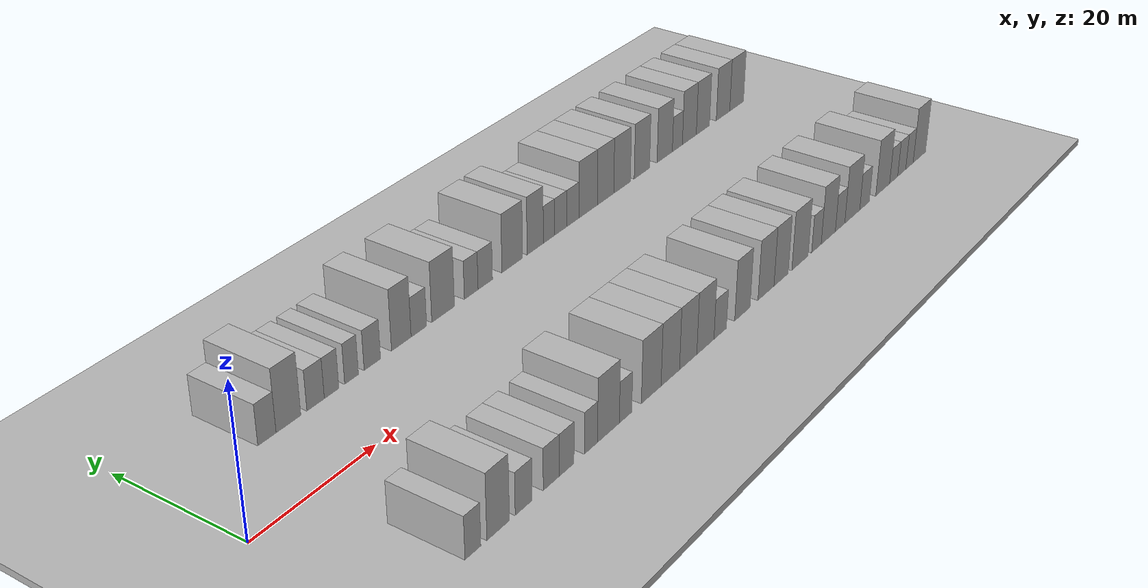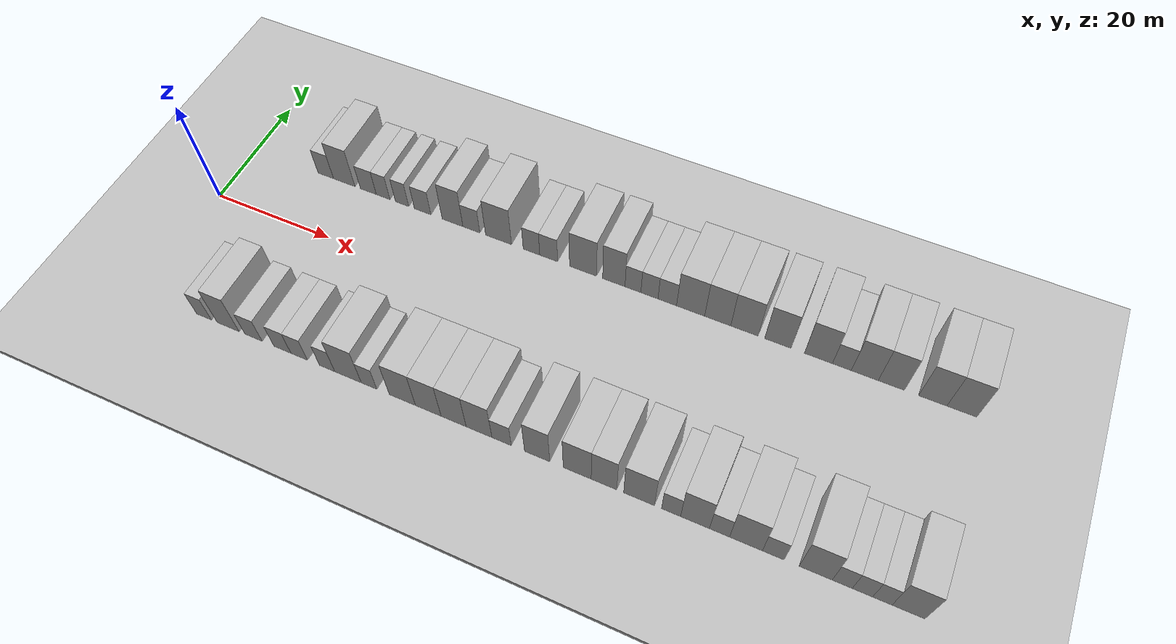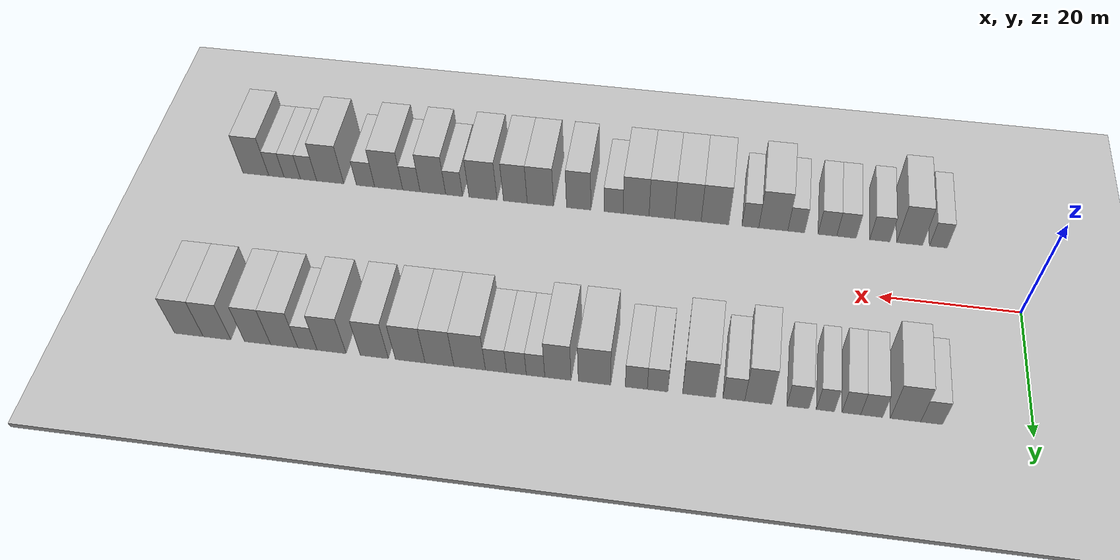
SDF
<sdf version="1.6">
 <world name="default">
  <include><name>ground_plane_1</name><uri>model://HANNAS_ground_plane</uri></include>
  <include>
   <name>ground_plane_2</name>
   <uri>model://HANNAS_ground_plane</uri>
   <pose>100 0 0  0 0 0</pose>
  </include>
  <model name="building_1">
   <static>1</static>
   <pose>13.4440 15.0000 0 0.000000 0.000000 1.570796</pose>
   <link name="link">
    <pose>0 0 3.00 0 0 0</pose>
    <collision name="collision"><geometry><box><size>10.0000 2.8879 6.0000</size></box></geometry></collision>
    <visual name="visual">
     <cast_shadows>0</cast_shadows>
     <geometry><box><size>10.0000 2.8879 6.0000</size></box></geometry>
     <material>
      <script>
       <uri>model://HANNAS_wall/materials/scripts</uri>
       <uri>model://HANNAS_wall/materials/textures</uri>
       <name>vrc/HANNAS_wall</name>
      </script>
     </material>
    </visual>
   </link>
  </model>
  <model name="building_2">
   <static>1</static>
   <pose>16.8819 15.0000 0 0.000000 0.000000 1.570796</pose>
   <link name="link">
    <pose>0 0 4.50 0 0 0</pose>
    <collision name="collision"><geometry><box><size>10.0000 3.9879 9.0000</size></box></geometry></collision>
    <visual name="visual">
     <cast_shadows>0</cast_shadows>
     <geometry><box><size>10.0000 3.9879 9.0000</size></box></geometry>
     <material>
      <script>
       <uri>model://HANNAS_wall/materials/scripts</uri>
       <uri>model://HANNAS_wall/materials/textures</uri>
       <name>vrc/HANNAS_wall</name>
      </script>
     </material>
    </visual>
   </link>
  </model>
  <model name="building_3">
   <static>1</static>
   <pose>21.3329 15.0000 0 0.000000 0.000000 1.570796</pose>
   <link name="link">
    <pose>0 0 3.00 0 0 0</pose>
    <collision name="collision"><geometry><box><size>10.0000 2.9140 6.0000</size></box></geometry></collision>
    <visual name="visual">
     <cast_shadows>0</cast_shadows>
     <geometry><box><size>10.0000 2.9140 6.0000</size></box></geometry>
     <material>
      <script>
       <uri>model://HANNAS_wall/materials/scripts</uri>
       <uri>model://HANNAS_wall/materials/textures</uri>
       <name>vrc/HANNAS_wall</name>
      </script>
     </material>
    </visual>
   </link>
  </model>
  <model name="building_4">
   <static>1</static>
   <pose>24.0286 15.0000 0 0.000000 0.000000 1.570796</pose>
   <link name="link">
    <pose>0 0 3.00 0 0 0</pose>
    <collision name="collision"><geometry><box><size>10.0000 2.4774 6.0000</size></box></geometry></collision>
    <visual name="visual">
     <cast_shadows>0</cast_shadows>
     <geometry><box><size>10.0000 2.4774 6.0000</size></box></geometry>
     <material>
      <script>
       <uri>model://HANNAS_wall/materials/scripts</uri>
       <uri>model://HANNAS_wall/materials/textures</uri>
       <name>vrc/HANNAS_wall</name>
      </script>
     </material>
    </visual>
   </link>
  </model>
  <model name="building_5">
   <static>1</static>
   <pose>27.4679 15.0000 0 0.000000 0.000000 1.570796</pose>
   <link name="link">
    <pose>0 0 3.00 0 0 0</pose>
    <collision name="collision"><geometry><box><size>10.0000 2.4012 6.0000</size></box></geometry></collision>
    <visual name="visual">
     <cast_shadows>0</cast_shadows>
     <geometry><box><size>10.0000 2.4012 6.0000</size></box></geometry>
     <material>
      <script>
       <uri>model://HANNAS_wall/materials/scripts</uri>
       <uri>model://HANNAS_wall/materials/textures</uri>
       <name>vrc/HANNAS_wall</name>
      </script>
     </material>
    </visual>
   </link>
  </model>
  <model name="building_6">
   <static>1</static>
   <pose>31.1410 15.0000 0 0.000000 0.000000 1.570796</pose>
   <link name="link">
    <pose>0 0 3.00 0 0 0</pose>
    <collision name="collision"><geometry><box><size>10.0000 2.9450 6.0000</size></box></geometry></collision>
    <visual name="visual">
     <cast_shadows>0</cast_shadows>
     <geometry><box><size>10.0000 2.9450 6.0000</size></box></geometry>
     <material>
      <script>
       <uri>model://HANNAS_wall/materials/scripts</uri>
       <uri>model://HANNAS_wall/materials/textures</uri>
       <name>vrc/HANNAS_wall</name>
      </script>
     </material>
    </visual>
   </link>
  </model>
  <model name="building_7">
   <static>1</static>
   <pose>36.4370 15.0000 0 0.000000 0.000000 1.570796</pose>
   <link name="link">
    <pose>0 0 4.50 0 0 0</pose>
    <collision name="collision"><geometry><box><size>10.0000 3.6470 9.0000</size></box></geometry></collision>
    <visual name="visual">
     <cast_shadows>0</cast_shadows>
     <geometry><box><size>10.0000 3.6470 9.0000</size></box></geometry>
     <material>
      <script>
       <uri>model://HANNAS_wall/materials/scripts</uri>
       <uri>model://HANNAS_wall/materials/textures</uri>
       <name>vrc/HANNAS_wall</name>
      </script>
     </material>
    </visual>
   </link>
  </model>
  <model name="building_8">
   <static>1</static>
   <pose>39.7335 15.0000 0 0.000000 0.000000 1.570796</pose>
   <link name="link">
    <pose>0 0 3.00 0 0 0</pose>
    <collision name="collision"><geometry><box><size>10.0000 2.9459 6.0000</size></box></geometry></collision>
    <visual name="visual">
     <cast_shadows>0</cast_shadows>
     <geometry><box><size>10.0000 2.9459 6.0000</size></box></geometry>
     <material>
      <script>
       <uri>model://HANNAS_wall/materials/scripts</uri>
       <uri>model://HANNAS_wall/materials/textures</uri>
       <name>vrc/HANNAS_wall</name>
      </script>
     </material>
    </visual>
   </link>
  </model>
  <model name="building_9">
   <static>1</static>
   <pose>44.4339 15.0000 0 0.000000 0.000000 1.570796</pose>
   <link name="link">
    <pose>0 0 4.50 0 0 0</pose>
    <collision name="collision"><geometry><box><size>10.0000 4.4549 9.0000</size></box></geometry></collision>
    <visual name="visual">
     <cast_shadows>0</cast_shadows>
     <geometry><box><size>10.0000 4.4549 9.0000</size></box></geometry>
     <material>
      <script>
       <uri>model://HANNAS_wall/materials/scripts</uri>
       <uri>model://HANNAS_wall/materials/textures</uri>
       <name>vrc/HANNAS_wall</name>
      </script>
     </material>
    </visual>
   </link>
  </model>
  <model name="building_10">
   <static>1</static>
   <pose>50.0576 15.0000 0 0.000000 0.000000 1.570796</pose>
   <link name="link">
    <pose>0 0 3.00 0 0 0</pose>
    <collision name="collision"><geometry><box><size>10.0000 2.7924 6.0000</size></box></geometry></collision>
    <visual name="visual">
     <cast_shadows>0</cast_shadows>
     <geometry><box><size>10.0000 2.7924 6.0000</size></box></geometry>
     <material>
      <script>
       <uri>model://HANNAS_wall/materials/scripts</uri>
       <uri>model://HANNAS_wall/materials/textures</uri>
       <name>vrc/HANNAS_wall</name>
      </script>
     </material>
    </visual>
   </link>
  </model>
  <model name="building_11">
   <static>1</static>
   <pose>52.9522 15.0000 0 0.000000 0.000000 1.570796</pose>
   <link name="link">
    <pose>0 0 3.00 0 0 0</pose>
    <collision name="collision"><geometry><box><size>10.0000 2.9969 6.0000</size></box></geometry></collision>
    <visual name="visual">
     <cast_shadows>0</cast_shadows>
     <geometry><box><size>10.0000 2.9969 6.0000</size></box></geometry>
     <material>
      <script>
       <uri>model://HANNAS_wall/materials/scripts</uri>
       <uri>model://HANNAS_wall/materials/textures</uri>
       <name>vrc/HANNAS_wall</name>
      </script>
     </material>
    </visual>
   </link>
  </model>
  <model name="building_12">
   <static>1</static>
   <pose>58.6778 15.0000 0 0.000000 0.000000 1.570796</pose>
   <link name="link">
    <pose>0 0 4.50 0 0 0</pose>
    <collision name="collision"><geometry><box><size>10.0000 4.4542 9.0000</size></box></geometry></collision>
    <visual name="visual">
     <cast_shadows>0</cast_shadows>
     <geometry><box><size>10.0000 4.4542 9.0000</size></box></geometry>
     <material>
      <script>
       <uri>model://HANNAS_wall/materials/scripts</uri>
       <uri>model://HANNAS_wall/materials/textures</uri>
       <name>vrc/HANNAS_wall</name>
      </script>
     </material>
    </visual>
   </link>
  </model>
  <model name="building_13">
   <static>1</static>
   <pose>63.7187 15.0000 0 0.000000 0.000000 1.570796</pose>
   <link name="link">
    <pose>0 0 4.50 0 0 0</pose>
    <collision name="collision"><geometry><box><size>10.0000 3.6277 9.0000</size></box></geometry></collision>
    <visual name="visual">
     <cast_shadows>0</cast_shadows>
     <geometry><box><size>10.0000 3.6277 9.0000</size></box></geometry>
     <material>
      <script>
       <uri>model://HANNAS_wall/materials/scripts</uri>
       <uri>model://HANNAS_wall/materials/textures</uri>
       <name>vrc/HANNAS_wall</name>
      </script>
     </material>
    </visual>
   </link>
  </model>
  <model name="building_14">
   <static>1</static>
   <pose>66.8152 15.0000 0 0.000000 0.000000 1.570796</pose>
   <link name="link">
    <pose>0 0 3.00 0 0 0</pose>
    <collision name="collision"><geometry><box><size>10.0000 2.5653 6.0000</size></box></geometry></collision>
    <visual name="visual">
     <cast_shadows>0</cast_shadows>
     <geometry><box><size>10.0000 2.5653 6.0000</size></box></geometry>
     <material>
      <script>
       <uri>model://HANNAS_wall/materials/scripts</uri>
       <uri>model://HANNAS_wall/materials/textures</uri>
       <name>vrc/HANNAS_wall</name>
      </script>
     </material>
    </visual>
   </link>
  </model>
  <model name="building_15">
   <static>1</static>
   <pose>69.4661 15.0000 0 0.000000 0.000000 1.570796</pose>
   <link name="link">
    <pose>0 0 3.00 0 0 0</pose>
    <collision name="collision"><geometry><box><size>10.0000 2.7366 6.0000</size></box></geometry></collision>
    <visual name="visual">
     <cast_shadows>0</cast_shadows>
     <geometry><box><size>10.0000 2.7366 6.0000</size></box></geometry>
     <material>
      <script>
       <uri>model://HANNAS_wall/materials/scripts</uri>
       <uri>model://HANNAS_wall/materials/textures</uri>
       <name>vrc/HANNAS_wall</name>
      </script>
     </material>
    </visual>
   </link>
  </model>
  <model name="building_16">
   <static>1</static>
   <pose>72.3064 15.0000 0 0.000000 0.000000 1.570796</pose>
   <link name="link">
    <pose>0 0 3.00 0 0 0</pose>
    <collision name="collision"><geometry><box><size>10.0000 2.9440 6.0000</size></box></geometry></collision>
    <visual name="visual">
     <cast_shadows>0</cast_shadows>
     <geometry><box><size>10.0000 2.9440 6.0000</size></box></geometry>
     <material>
      <script>
       <uri>model://HANNAS_wall/materials/scripts</uri>
       <uri>model://HANNAS_wall/materials/textures</uri>
       <name>vrc/HANNAS_wall</name>
      </script>
     </material>
    </visual>
   </link>
  </model>
  <model name="building_17">
   <static>1</static>
   <pose>75.9872 15.0000 0 0.000000 0.000000 1.570796</pose>
   <link name="link">
    <pose>0 0 4.50 0 0 0</pose>
    <collision name="collision"><geometry><box><size>10.0000 4.4175 9.0000</size></box></geometry></collision>
    <visual name="visual">
     <cast_shadows>0</cast_shadows>
     <geometry><box><size>10.0000 4.4175 9.0000</size></box></geometry>
     <material>
      <script>
       <uri>model://HANNAS_wall/materials/scripts</uri>
       <uri>model://HANNAS_wall/materials/textures</uri>
       <name>vrc/HANNAS_wall</name>
      </script>
     </material>
    </visual>
   </link>
  </model>
  <model name="building_18">
   <static>1</static>
   <pose>80.2217 15.0000 0 0.000000 0.000000 1.570796</pose>
   <link name="link">
    <pose>0 0 4.50 0 0 0</pose>
    <collision name="collision"><geometry><box><size>10.0000 4.0515 9.0000</size></box></geometry></collision>
    <visual name="visual">
     <cast_shadows>0</cast_shadows>
     <geometry><box><size>10.0000 4.0515 9.0000</size></box></geometry>
     <material>
      <script>
       <uri>model://HANNAS_wall/materials/scripts</uri>
       <uri>model://HANNAS_wall/materials/textures</uri>
       <name>vrc/HANNAS_wall</name>
      </script>
     </material>
    </visual>
   </link>
  </model>
  <model name="building_19">
   <static>1</static>
   <pose>84.3455 15.0000 0 0.000000 0.000000 1.570796</pose>
   <link name="link">
    <pose>0 0 4.50 0 0 0</pose>
    <collision name="collision"><geometry><box><size>10.0000 4.1960 9.0000</size></box></geometry></collision>
    <visual name="visual">
     <cast_shadows>0</cast_shadows>
     <geometry><box><size>10.0000 4.1960 9.0000</size></box></geometry>
     <material>
      <script>
       <uri>model://HANNAS_wall/materials/scripts</uri>
       <uri>model://HANNAS_wall/materials/textures</uri>
       <name>vrc/HANNAS_wall</name>
      </script>
     </material>
    </visual>
   </link>
  </model>
  <model name="building_20">
   <static>1</static>
   <pose>89.4434 15.0000 0 0.000000 0.000000 1.570796</pose>
   <link name="link">
    <pose>0 0 4.50 0 0 0</pose>
    <collision name="collision"><geometry><box><size>10.0000 4.0000 9.0000</size></box></geometry></collision>
    <visual name="visual">
     <cast_shadows>0</cast_shadows>
     <geometry><box><size>10.0000 4.0000 9.0000</size></box></geometry>
     <material>
      <script>
       <uri>model://HANNAS_wall/materials/scripts</uri>
       <uri>model://HANNAS_wall/materials/textures</uri>
       <name>vrc/HANNAS_wall</name>
      </script>
     </material>
    </visual>
   </link>
  </model>
  <model name="building_21">
   <static>1</static>
   <pose>95.5154 15.0000 0 0.000000 0.000000 1.570796</pose>
   <link name="link">
    <pose>0 0 4.50 0 0 0</pose>
    <collision name="collision"><geometry><box><size>10.0000 4.1440 9.0000</size></box></geometry></collision>
    <visual name="visual">
     <cast_shadows>0</cast_shadows>
     <geometry><box><size>10.0000 4.1440 9.0000</size></box></geometry>
     <material>
      <script>
       <uri>model://HANNAS_wall/materials/scripts</uri>
       <uri>model://HANNAS_wall/materials/textures</uri>
       <name>vrc/HANNAS_wall</name>
      </script>
     </material>
    </visual>
   </link>
  </model>
  <model name="building_22">
   <static>1</static>
   <pose>98.9690 15.0000 0 0.000000 0.000000 1.570796</pose>
   <link name="link">
    <pose>0 0 3.00 0 0 0</pose>
    <collision name="collision"><geometry><box><size>10.0000 2.7631 6.0000</size></box></geometry></collision>
    <visual name="visual">
     <cast_shadows>0</cast_shadows>
     <geometry><box><size>10.0000 2.7631 6.0000</size></box></geometry>
     <material>
      <script>
       <uri>model://HANNAS_wall/materials/scripts</uri>
       <uri>model://HANNAS_wall/materials/textures</uri>
       <name>vrc/HANNAS_wall</name>
      </script>
     </material>
    </visual>
   </link>
  </model>
  <model name="building_23">
   <static>1</static>
   <pose>102.3103 15.0000 0 0.000000 0.000000 1.570796</pose>
   <link name="link">
    <pose>0 0 4.50 0 0 0</pose>
    <collision name="collision"><geometry><box><size>10.0000 3.9195 9.0000</size></box></geometry></collision>
    <visual name="visual">
     <cast_shadows>0</cast_shadows>
     <geometry><box><size>10.0000 3.9195 9.0000</size></box></geometry>
     <material>
      <script>
       <uri>model://HANNAS_wall/materials/scripts</uri>
       <uri>model://HANNAS_wall/materials/textures</uri>
       <name>vrc/HANNAS_wall</name>
      </script>
     </material>
    </visual>
   </link>
  </model>
  <model name="building_24">
   <static>1</static>
   <pose>106.1572 15.0000 0 0.000000 0.000000 1.570796</pose>
   <link name="link">
    <pose>0 0 4.50 0 0 0</pose>
    <collision name="collision"><geometry><box><size>10.0000 3.7744 9.0000</size></box></geometry></collision>
    <visual name="visual">
     <cast_shadows>0</cast_shadows>
     <geometry><box><size>10.0000 3.7744 9.0000</size></box></geometry>
     <material>
      <script>
       <uri>model://HANNAS_wall/materials/scripts</uri>
       <uri>model://HANNAS_wall/materials/textures</uri>
       <name>vrc/HANNAS_wall</name>
      </script>
     </material>
    </visual>
   </link>
  </model>
  <model name="building_25">
   <static>1</static>
   <pose>112.0413 15.0000 0 0.000000 0.000000 1.570796</pose>
   <link name="link">
    <pose>0 0 4.50 0 0 0</pose>
    <collision name="collision"><geometry><box><size>10.0000 3.9937 9.0000</size></box></geometry></collision>
    <visual name="visual">
     <cast_shadows>0</cast_shadows>
     <geometry><box><size>10.0000 3.9937 9.0000</size></box></geometry>
     <material>
      <script>
       <uri>model://HANNAS_wall/materials/scripts</uri>
       <uri>model://HANNAS_wall/materials/textures</uri>
       <name>vrc/HANNAS_wall</name>
      </script>
     </material>
    </visual>
   </link>
  </model>
  <model name="building_26">
   <static>1</static>
   <pose>116.1255 15.0000 0 0.000000 0.000000 1.570796</pose>
   <link name="link">
    <pose>0 0 4.50 0 0 0</pose>
    <collision name="collision"><geometry><box><size>10.0000 4.1748 9.0000</size></box></geometry></collision>
    <visual name="visual">
     <cast_shadows>0</cast_shadows>
     <geometry><box><size>10.0000 4.1748 9.0000</size></box></geometry>
     <material>
      <script>
       <uri>model://HANNAS_wall/materials/scripts</uri>
       <uri>model://HANNAS_wall/materials/textures</uri>
       <name>vrc/HANNAS_wall</name>
      </script>
     </material>
    </visual>
   </link>
  </model>
  <model name="building_54">
   <static>1</static>
   <pose>11.3005 -15.0000 0 0.000000 0.000000 1.570796</pose>
   <link name="link">
    <pose>0 0 3.00 0 0 0</pose>
    <collision name="collision"><geometry><box><size>10.0000 2.6010 6.0000</size></box></geometry></collision>
    <visual name="visual">
     <cast_shadows>0</cast_shadows>
     <geometry><box><size>10.0000 2.6010 6.0000</size></box></geometry>
     <material>
      <script>
       <uri>model://HANNAS_wall/materials/scripts</uri>
       <uri>model://HANNAS_wall/materials/textures</uri>
       <name>vrc/HANNAS_wall</name>
      </script>
     </material>
    </visual>
   </link>
  </model>
  <model name="building_55">
   <static>1</static>
   <pose>15.5116 -15.0000 0 0.000000 0.000000 1.570796</pose>
   <link name="link">
    <pose>0 0 4.50 0 0 0</pose>
    <collision name="collision"><geometry><box><size>10.0000 3.8211 9.0000</size></box></geometry></collision>
    <visual name="visual">
     <cast_shadows>0</cast_shadows>
     <geometry><box><size>10.0000 3.8211 9.0000</size></box></geometry>
     <material>
      <script>
       <uri>model://HANNAS_wall/materials/scripts</uri>
       <uri>model://HANNAS_wall/materials/textures</uri>
       <name>vrc/HANNAS_wall</name>
      </script>
     </material>
    </visual>
   </link>
  </model>
  <model name="building_56">
   <static>1</static>
   <pose>19.9069 -15.0000 0 0.000000 0.000000 1.570796</pose>
   <link name="link">
    <pose>0 0 3.00 0 0 0</pose>
    <collision name="collision"><geometry><box><size>10.0000 2.9697 6.0000</size></box></geometry></collision>
    <visual name="visual">
     <cast_shadows>0</cast_shadows>
     <geometry><box><size>10.0000 2.9697 6.0000</size></box></geometry>
     <material>
      <script>
       <uri>model://HANNAS_wall/materials/scripts</uri>
       <uri>model://HANNAS_wall/materials/textures</uri>
       <name>vrc/HANNAS_wall</name>
      </script>
     </material>
    </visual>
   </link>
  </model>
  <model name="building_57">
   <static>1</static>
   <pose>24.8345 -15.0000 0 0.000000 0.000000 1.570796</pose>
   <link name="link">
    <pose>0 0 3.00 0 0 0</pose>
    <collision name="collision"><geometry><box><size>10.0000 2.8853 6.0000</size></box></geometry></collision>
    <visual name="visual">
     <cast_shadows>0</cast_shadows>
     <geometry><box><size>10.0000 2.8853 6.0000</size></box></geometry>
     <material>
      <script>
       <uri>model://HANNAS_wall/materials/scripts</uri>
       <uri>model://HANNAS_wall/materials/textures</uri>
       <name>vrc/HANNAS_wall</name>
      </script>
     </material>
    </visual>
   </link>
  </model>
  <model name="building_58">
   <static>1</static>
   <pose>27.6690 -15.0000 0 0.000000 0.000000 1.570796</pose>
   <link name="link">
    <pose>0 0 3.00 0 0 0</pose>
    <collision name="collision"><geometry><box><size>10.0000 2.7837 6.0000</size></box></geometry></collision>
    <visual name="visual">
     <cast_shadows>0</cast_shadows>
     <geometry><box><size>10.0000 2.7837 6.0000</size></box></geometry>
     <material>
      <script>
       <uri>model://HANNAS_wall/materials/scripts</uri>
       <uri>model://HANNAS_wall/materials/textures</uri>
       <name>vrc/HANNAS_wall</name>
      </script>
     </material>
    </visual>
   </link>
  </model>
  <model name="building_59">
   <static>1</static>
   <pose>32.3231 -15.0000 0 0.000000 0.000000 1.570796</pose>
   <link name="link">
    <pose>0 0 3.00 0 0 0</pose>
    <collision name="collision"><geometry><box><size>10.0000 2.5244 6.0000</size></box></geometry></collision>
    <visual name="visual">
     <cast_shadows>0</cast_shadows>
     <geometry><box><size>10.0000 2.5244 6.0000</size></box></geometry>
     <material>
      <script>
       <uri>model://HANNAS_wall/materials/scripts</uri>
       <uri>model://HANNAS_wall/materials/textures</uri>
       <name>vrc/HANNAS_wall</name>
      </script>
     </material>
    </visual>
   </link>
  </model>
  <model name="building_60">
   <static>1</static>
   <pose>35.7570 -15.0000 0 0.000000 0.000000 1.570796</pose>
   <link name="link">
    <pose>0 0 4.50 0 0 0</pose>
    <collision name="collision"><geometry><box><size>10.0000 4.3434 9.0000</size></box></geometry></collision>
    <visual name="visual">
     <cast_shadows>0</cast_shadows>
     <geometry><box><size>10.0000 4.3434 9.0000</size></box></geometry>
     <material>
      <script>
       <uri>model://HANNAS_wall/materials/scripts</uri>
       <uri>model://HANNAS_wall/materials/textures</uri>
       <name>vrc/HANNAS_wall</name>
      </script>
     </material>
    </visual>
   </link>
  </model>
  <model name="building_61">
   <static>1</static>
   <pose>39.1903 -15.0000 0 0.000000 0.000000 1.570796</pose>
   <link name="link">
    <pose>0 0 3.00 0 0 0</pose>
    <collision name="collision"><geometry><box><size>10.0000 2.5233 6.0000</size></box></geometry></collision>
    <visual name="visual">
     <cast_shadows>0</cast_shadows>
     <geometry><box><size>10.0000 2.5233 6.0000</size></box></geometry>
     <material>
      <script>
       <uri>model://HANNAS_wall/materials/scripts</uri>
       <uri>model://HANNAS_wall/materials/textures</uri>
       <name>vrc/HANNAS_wall</name>
      </script>
     </material>
    </visual>
   </link>
  </model>
  <model name="building_62">
   <static>1</static>
   <pose>44.5433 -15.0000 0 0.000000 0.000000 1.570796</pose>
   <link name="link">
    <pose>0 0 4.50 0 0 0</pose>
    <collision name="collision"><geometry><box><size>10.0000 4.1827 9.0000</size></box></geometry></collision>
    <visual name="visual">
     <cast_shadows>0</cast_shadows>
     <geometry><box><size>10.0000 4.1827 9.0000</size></box></geometry>
     <material>
      <script>
       <uri>model://HANNAS_wall/materials/scripts</uri>
       <uri>model://HANNAS_wall/materials/textures</uri>
       <name>vrc/HANNAS_wall</name>
      </script>
     </material>
    </visual>
   </link>
  </model>
  <model name="building_63">
   <static>1</static>
   <pose>48.6449 -15.0000 0 0.000000 0.000000 1.570796</pose>
   <link name="link">
    <pose>0 0 4.50 0 0 0</pose>
    <collision name="collision"><geometry><box><size>10.0000 4.0206 9.0000</size></box></geometry></collision>
    <visual name="visual">
     <cast_shadows>0</cast_shadows>
     <geometry><box><size>10.0000 4.0206 9.0000</size></box></geometry>
     <material>
      <script>
       <uri>model://HANNAS_wall/materials/scripts</uri>
       <uri>model://HANNAS_wall/materials/textures</uri>
       <name>vrc/HANNAS_wall</name>
      </script>
     </material>
    </visual>
   </link>
  </model>
  <model name="building_64">
   <static>1</static>
   <pose>52.6003 -15.0000 0 0.000000 0.000000 1.570796</pose>
   <link name="link">
    <pose>0 0 4.50 0 0 0</pose>
    <collision name="collision"><geometry><box><size>10.0000 3.8901 9.0000</size></box></geometry></collision>
    <visual name="visual">
     <cast_shadows>0</cast_shadows>
     <geometry><box><size>10.0000 3.8901 9.0000</size></box></geometry>
     <material>
      <script>
       <uri>model://HANNAS_wall/materials/scripts</uri>
       <uri>model://HANNAS_wall/materials/textures</uri>
       <name>vrc/HANNAS_wall</name>
      </script>
     </material>
    </visual>
   </link>
  </model>
  <model name="building_65">
   <static>1</static>
   <pose>56.5286 -15.0000 0 0.000000 0.000000 1.570796</pose>
   <link name="link">
    <pose>0 0 4.50 0 0 0</pose>
    <collision name="collision"><geometry><box><size>10.0000 3.9665 9.0000</size></box></geometry></collision>
    <visual name="visual">
     <cast_shadows>0</cast_shadows>
     <geometry><box><size>10.0000 3.9665 9.0000</size></box></geometry>
     <material>
      <script>
       <uri>model://HANNAS_wall/materials/scripts</uri>
       <uri>model://HANNAS_wall/materials/textures</uri>
       <name>vrc/HANNAS_wall</name>
      </script>
     </material>
    </visual>
   </link>
  </model>
  <model name="building_66">
   <static>1</static>
   <pose>59.9837 -15.0000 0 0.000000 0.000000 1.570796</pose>
   <link name="link">
    <pose>0 0 3.00 0 0 0</pose>
    <collision name="collision"><geometry><box><size>10.0000 2.9436 6.0000</size></box></geometry></collision>
    <visual name="visual">
     <cast_shadows>0</cast_shadows>
     <geometry><box><size>10.0000 2.9436 6.0000</size></box></geometry>
     <material>
      <script>
       <uri>model://HANNAS_wall/materials/scripts</uri>
       <uri>model://HANNAS_wall/materials/textures</uri>
       <name>vrc/HANNAS_wall</name>
      </script>
     </material>
    </visual>
   </link>
  </model>
  <model name="building_67">
   <static>1</static>
   <pose>65.3320 -15.0000 0 0.000000 0.000000 1.570796</pose>
   <link name="link">
    <pose>0 0 4.50 0 0 0</pose>
    <collision name="collision"><geometry><box><size>10.0000 3.7531 9.0000</size></box></geometry></collision>
    <visual name="visual">
     <cast_shadows>0</cast_shadows>
     <geometry><box><size>10.0000 3.7531 9.0000</size></box></geometry>
     <material>
      <script>
       <uri>model://HANNAS_wall/materials/scripts</uri>
       <uri>model://HANNAS_wall/materials/textures</uri>
       <name>vrc/HANNAS_wall</name>
      </script>
     </material>
    </visual>
   </link>
  </model>
  <model name="building_68">
   <static>1</static>
   <pose>71.2526 -15.0000 0 0.000000 0.000000 1.570796</pose>
   <link name="link">
    <pose>0 0 4.50 0 0 0</pose>
    <collision name="collision"><geometry><box><size>10.0000 4.0881 9.0000</size></box></geometry></collision>
    <visual name="visual">
     <cast_shadows>0</cast_shadows>
     <geometry><box><size>10.0000 4.0881 9.0000</size></box></geometry>
     <material>
      <script>
       <uri>model://HANNAS_wall/materials/scripts</uri>
       <uri>model://HANNAS_wall/materials/textures</uri>
       <name>vrc/HANNAS_wall</name>
      </script>
     </material>
    </visual>
   </link>
  </model>
  <model name="building_69">
   <static>1</static>
   <pose>75.1438 -15.0000 0 0.000000 0.000000 1.570796</pose>
   <link name="link">
    <pose>0 0 4.50 0 0 0</pose>
    <collision name="collision"><geometry><box><size>10.0000 3.6941 9.0000</size></box></geometry></collision>
    <visual name="visual">
     <cast_shadows>0</cast_shadows>
     <geometry><box><size>10.0000 3.6941 9.0000</size></box></geometry>
     <material>
      <script>
       <uri>model://HANNAS_wall/materials/scripts</uri>
       <uri>model://HANNAS_wall/materials/textures</uri>
       <name>vrc/HANNAS_wall</name>
      </script>
     </material>
    </visual>
   </link>
  </model>
  <model name="building_70">
   <static>1</static>
   <pose>80.1816 -15.0000 0 0.000000 0.000000 1.570796</pose>
   <link name="link">
    <pose>0 0 4.50 0 0 0</pose>
    <collision name="collision"><geometry><box><size>10.0000 4.3816 9.0000</size></box></geometry></collision>
    <visual name="visual">
     <cast_shadows>0</cast_shadows>
     <geometry><box><size>10.0000 4.3816 9.0000</size></box></geometry>
     <material>
      <script>
       <uri>model://HANNAS_wall/materials/scripts</uri>
       <uri>model://HANNAS_wall/materials/textures</uri>
       <name>vrc/HANNAS_wall</name>
      </script>
     </material>
    </visual>
   </link>
  </model>
  <model name="building_71">
   <static>1</static>
   <pose>84.7044 -15.0000 0 0.000000 0.000000 1.570796</pose>
   <link name="link">
    <pose>0 0 3.00 0 0 0</pose>
    <collision name="collision"><geometry><box><size>10.0000 2.6641 6.0000</size></box></geometry></collision>
    <visual name="visual">
     <cast_shadows>0</cast_shadows>
     <geometry><box><size>10.0000 2.6641 6.0000</size></box></geometry>
     <material>
      <script>
       <uri>model://HANNAS_wall/materials/scripts</uri>
       <uri>model://HANNAS_wall/materials/textures</uri>
       <name>vrc/HANNAS_wall</name>
      </script>
     </material>
    </visual>
   </link>
  </model>
  <model name="building_72">
   <static>1</static>
   <pose>88.0471 -15.0000 0 0.000000 0.000000 1.570796</pose>
   <link name="link">
    <pose>0 0 4.50 0 0 0</pose>
    <collision name="collision"><geometry><box><size>10.0000 4.0213 9.0000</size></box></geometry></collision>
    <visual name="visual">
     <cast_shadows>0</cast_shadows>
     <geometry><box><size>10.0000 4.0213 9.0000</size></box></geometry>
     <material>
      <script>
       <uri>model://HANNAS_wall/materials/scripts</uri>
       <uri>model://HANNAS_wall/materials/textures</uri>
       <name>vrc/HANNAS_wall</name>
      </script>
     </material>
    </visual>
   </link>
  </model>
  <model name="building_73">
   <static>1</static>
   <pose>91.4347 -15.0000 0 0.000000 0.000000 1.570796</pose>
   <link name="link">
    <pose>0 0 3.00 0 0 0</pose>
    <collision name="collision"><geometry><box><size>10.0000 2.7540 6.0000</size></box></geometry></collision>
    <visual name="visual">
     <cast_shadows>0</cast_shadows>
     <geometry><box><size>10.0000 2.7540 6.0000</size></box></geometry>
     <material>
      <script>
       <uri>model://HANNAS_wall/materials/scripts</uri>
       <uri>model://HANNAS_wall/materials/textures</uri>
       <name>vrc/HANNAS_wall</name>
      </script>
     </material>
    </visual>
   </link>
  </model>
  <model name="building_74">
   <static>1</static>
   <pose>95.0347 -15.0000 0 0.000000 0.000000 1.570796</pose>
   <link name="link">
    <pose>0 0 4.50 0 0 0</pose>
    <collision name="collision"><geometry><box><size>10.0000 4.4460 9.0000</size></box></geometry></collision>
    <visual name="visual">
     <cast_shadows>0</cast_shadows>
     <geometry><box><size>10.0000 4.4460 9.0000</size></box></geometry>
     <material>
      <script>
       <uri>model://HANNAS_wall/materials/scripts</uri>
       <uri>model://HANNAS_wall/materials/textures</uri>
       <name>vrc/HANNAS_wall</name>
      </script>
     </material>
    </visual>
   </link>
  </model>
  <model name="building_75">
   <static>1</static>
   <pose>98.7172 -15.0000 0 0.000000 0.000000 1.570796</pose>
   <link name="link">
    <pose>0 0 3.00 0 0 0</pose>
    <collision name="collision"><geometry><box><size>10.0000 2.9191 6.0000</size></box></geometry></collision>
    <visual name="visual">
     <cast_shadows>0</cast_shadows>
     <geometry><box><size>10.0000 2.9191 6.0000</size></box></geometry>
     <material>
      <script>
       <uri>model://HANNAS_wall/materials/scripts</uri>
       <uri>model://HANNAS_wall/materials/textures</uri>
       <name>vrc/HANNAS_wall</name>
      </script>
     </material>
    </visual>
   </link>
  </model>
  <model name="building_76">
   <static>1</static>
   <pose>104.3505 -15.0000 0 0.000000 0.000000 1.570796</pose>
   <link name="link">
    <pose>0 0 4.50 0 0 0</pose>
    <collision name="collision"><geometry><box><size>10.0000 4.3474 9.0000</size></box></geometry></collision>
    <visual name="visual">
     <cast_shadows>0</cast_shadows>
     <geometry><box><size>10.0000 4.3474 9.0000</size></box></geometry>
     <material>
      <script>
       <uri>model://HANNAS_wall/materials/scripts</uri>
       <uri>model://HANNAS_wall/materials/textures</uri>
       <name>vrc/HANNAS_wall</name>
      </script>
     </material>
    </visual>
   </link>
  </model>
  <model name="building_77">
   <static>1</static>
   <pose>107.8252 -15.0000 0 0.000000 0.000000 1.570796</pose>
   <link name="link">
    <pose>0 0 3.00 0 0 0</pose>
    <collision name="collision"><geometry><box><size>10.0000 2.6021 6.0000</size></box></geometry></collision>
    <visual name="visual">
     <cast_shadows>0</cast_shadows>
     <geometry><box><size>10.0000 2.6021 6.0000</size></box></geometry>
     <material>
      <script>
       <uri>model://HANNAS_wall/materials/scripts</uri>
       <uri>model://HANNAS_wall/materials/textures</uri>
       <name>vrc/HANNAS_wall</name>
      </script>
     </material>
    </visual>
   </link>
  </model>
  <model name="building_78">
   <static>1</static>
   <pose>110.4353 -15.0000 0 0.000000 0.000000 1.570796</pose>
   <link name="link">
    <pose>0 0 3.00 0 0 0</pose>
    <collision name="collision"><geometry><box><size>10.0000 2.6181 6.0000</size></box></geometry></collision>
    <visual name="visual">
     <cast_shadows>0</cast_shadows>
     <geometry><box><size>10.0000 2.6181 6.0000</size></box></geometry>
     <material>
      <script>
       <uri>model://HANNAS_wall/materials/scripts</uri>
       <uri>model://HANNAS_wall/materials/textures</uri>
       <name>vrc/HANNAS_wall</name>
      </script>
     </material>
    </visual>
   </link>
  </model>
  <model name="building_79">
   <static>1</static>
   <pose>112.9795 -15.0000 0 0.000000 0.000000 1.570796</pose>
   <link name="link">
    <pose>0 0 3.00 0 0 0</pose>
    <collision name="collision"><geometry><box><size>10.0000 2.4704 6.0000</size></box></geometry></collision>
    <visual name="visual">
     <cast_shadows>0</cast_shadows>
     <geometry><box><size>10.0000 2.4704 6.0000</size></box></geometry>
     <material>
      <script>
       <uri>model://HANNAS_wall/materials/scripts</uri>
       <uri>model://HANNAS_wall/materials/textures</uri>
       <name>vrc/HANNAS_wall</name>
      </script>
     </material>
    </visual>
   </link>
  </model>
  <model name="building_80">
   <static>1</static>
   <pose>116.2986 -15.0000 0 0.000000 0.000000 1.570796</pose>
   <link name="link">
    <pose>0 0 4.50 0 0 0</pose>
    <collision name="collision"><geometry><box><size>10.0000 4.1677 9.0000</size></box></geometry></collision>
    <visual name="visual">
     <cast_shadows>0</cast_shadows>
     <geometry><box><size>10.0000 4.1677 9.0000</size></box></geometry>
     <material>
      <script>
       <uri>model://HANNAS_wall/materials/scripts</uri>
       <uri>model://HANNAS_wall/materials/textures</uri>
       <name>vrc/HANNAS_wall</name>
      </script>
     </material>
    </visual>
   </link>
  </model>
 </world>
</sdf>
